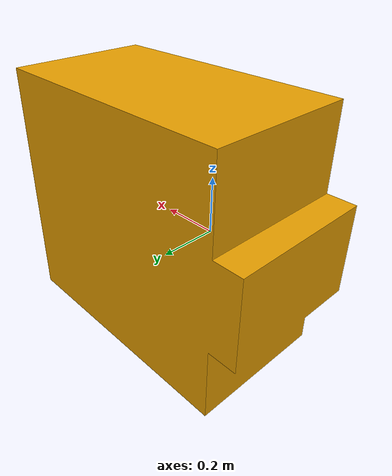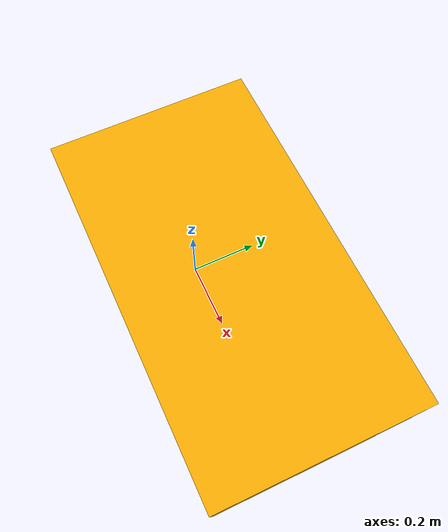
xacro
<?xml version="1.0"?>
<robot name="link_23_s4_truss_battery_top_right" xmlns:xacro="http://www.ros.org/wiki/xacro">

   <!-- Battery Top Right -->
  <link name="link_23_s4_truss_battery_top_right">

    <inertial>
      <origin xyz="0 0 0.0" rpy="0 0 0"/>
      <mass value="1"/>
      <inertia ixx="100"  ixy="0"  ixz="0" iyy="100" iyz="0" izz="100" />
    </inertial>

    <visual>
      <origin xyz="0 0 0" rpy="0 0 0" />
      <geometry>
        <mesh filename="package://iss_description/meshes/s4_truss_23_battery_top_right.dae" scale="1 1 1"/>
      </geometry>
    </visual>

    <collision>
      <origin xyz="0 0 0" rpy="0 0 0"/>
      <geometry>
        <mesh filename="package://iss_description/meshes/s4_truss_23_battery_top_right.dae" scale="1 1 1"/>
      </geometry>
    </collision>

  </link>

</robot>
